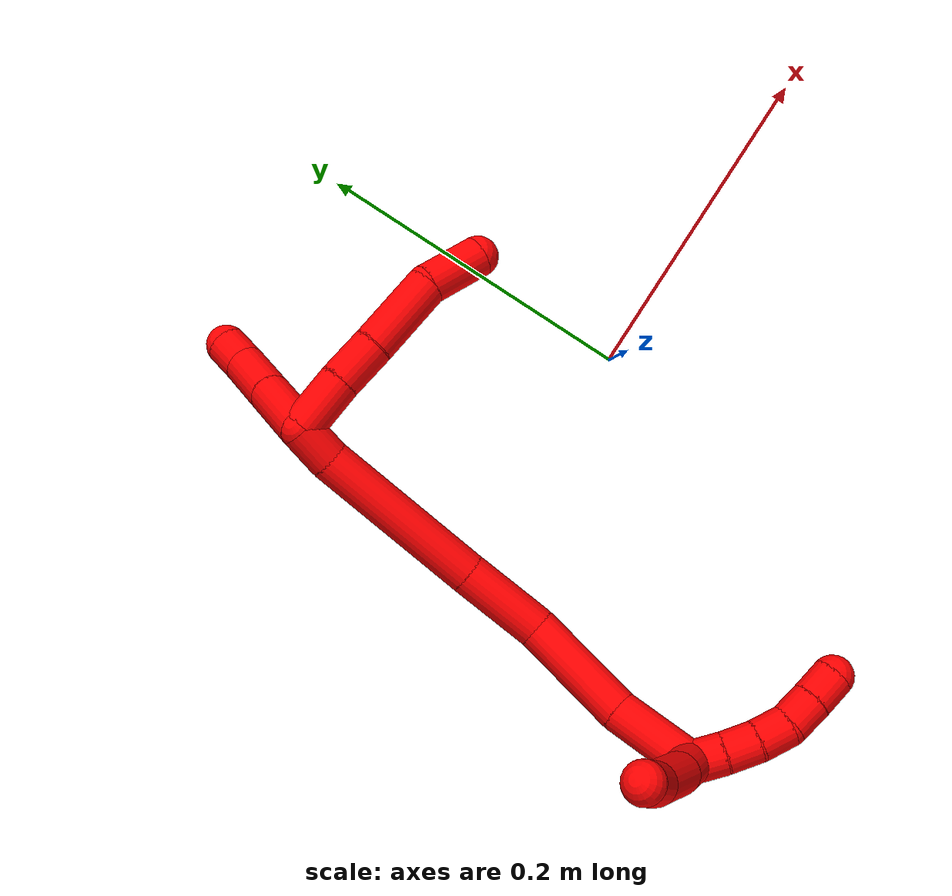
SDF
<sdf version="1.7">
 <world name="default">
  <model name="2">
   <static>0</static>
   <link name="2">
    <collision name="collision-cylinder-e_1_2_8">
     <pose>0.01633 -0.005977 -0.002903 2.0229 1.18438 1.64267</pose>
     <geometry><cylinder><radius>0.0125</radius><length>0.035259</length></cylinder></geometry>
     <surface>
      <friction><ode><mu>1.16</mu><mu2>1.16</mu2><slip1>0</slip1><slip2>0</slip2></ode></friction>
      <contact><ode><kp>1e+06</kp><kd>1</kd><max_vel>0</max_vel><min_depth>0.001</min_depth></ode></contact>
     </surface>
    </collision>
    <visual name="visual-cylinder-e_1_2_8">
     <pose>0.01633 -0.005977 -0.002903 2.0229 1.18438 1.64267</pose>
     <geometry><cylinder><radius>0.0125</radius><length>0.035259</length></cylinder></geometry>
     <material><ambient>1 0 0 1</ambient></material>
    </visual>
    <collision name="collision-cylinder-e_2_8_9">
     <pose>0.045581 -0.017383 -0.008771 2.07066 1.12426 1.63068</pose>
     <geometry><cylinder><radius>0.0125</radius><length>0.028653</length></cylinder></geometry>
     <surface>
      <friction><ode><mu>1.16</mu><mu2>1.16</mu2><slip1>0</slip1><slip2>0</slip2></ode></friction>
      <contact><ode><kp>1e+06</kp><kd>1</kd><max_vel>0</max_vel><min_depth>0.001</min_depth></ode></contact>
     </surface>
    </collision>
    <visual name="visual-cylinder-e_2_8_9">
     <pose>0.045581 -0.017383 -0.008771 2.07066 1.12426 1.63068</pose>
     <geometry><cylinder><radius>0.0125</radius><length>0.028653</length></cylinder></geometry>
     <material><ambient>1 0 0 1</ambient></material>
    </visual>
    <collision name="collision-cylinder-e_3_9_10">
     <pose>0.081017 -0.030674 -0.017749 2.22381 1.15662 1.8458</pose>
     <geometry><cylinder><radius>0.0125</radius><length>0.049186</length></cylinder></geometry>
     <surface>
      <friction><ode><mu>1.16</mu><mu2>1.16</mu2><slip1>0</slip1><slip2>0</slip2></ode></friction>
      <contact><ode><kp>1e+06</kp><kd>1</kd><max_vel>0</max_vel><min_depth>0.001</min_depth></ode></contact>
     </surface>
    </collision>
    <visual name="visual-cylinder-e_3_9_10">
     <pose>0.081017 -0.030674 -0.017749 2.22381 1.15662 1.8458</pose>
     <geometry><cylinder><radius>0.0125</radius><length>0.049186</length></cylinder></geometry>
     <material><ambient>1 0 0 1</ambient></material>
    </visual>
    <collision name="collision-cylinder-e_4_10_6">
     <pose>0.1173 -0.046908 -0.032747 2.39137 0.842471 1.69962</pose>
     <geometry><cylinder><radius>0.0125</radius><length>0.036901</length></cylinder></geometry>
     <surface>
      <friction><ode><mu>1.16</mu><mu2>1.16</mu2><slip1>0</slip1><slip2>0</slip2></ode></friction>
      <contact><ode><kp>1e+06</kp><kd>1</kd><max_vel>0</max_vel><min_depth>0.001</min_depth></ode></contact>
     </surface>
    </collision>
    <visual name="visual-cylinder-e_4_10_6">
     <pose>0.1173 -0.046908 -0.032747 2.39137 0.842471 1.69962</pose>
     <geometry><cylinder><radius>0.0125</radius><length>0.036901</length></cylinder></geometry>
     <material><ambient>1 0 0 1</ambient></material>
    </visual>
    <collision name="collision-cylinder-e_1_2_11">
     <pose>0.010021 0.018405 -0.00582 -1.87707 0.478832 -0.643265</pose>
     <geometry><cylinder><radius>0.0125</radius><length>0.0435</length></cylinder></geometry>
     <surface>
      <friction><ode><mu>1.16</mu><mu2>1.16</mu2><slip1>0</slip1><slip2>0</slip2></ode></friction>
      <contact><ode><kp>1e+06</kp><kd>1</kd><max_vel>0</max_vel><min_depth>0.001</min_depth></ode></contact>
     </surface>
    </collision>
    <visual name="visual-cylinder-e_1_2_11">
     <pose>0.010021 0.018405 -0.00582 -1.87707 0.478832 -0.643265</pose>
     <geometry><cylinder><radius>0.0125</radius><length>0.0435</length></cylinder></geometry>
     <material><ambient>1 0 0 1</ambient></material>
    </visual>
    <collision name="collision-cylinder-e_2_11_12">
     <pose>0.028653 0.052263 -0.015864 -1.83763 0.493224 -0.637104</pose>
     <geometry><cylinder><radius>0.0125</radius><length>0.036373</length></cylinder></geometry>
     <surface>
      <friction><ode><mu>1.16</mu><mu2>1.16</mu2><slip1>0</slip1><slip2>0</slip2></ode></friction>
      <contact><ode><kp>1e+06</kp><kd>1</kd><max_vel>0</max_vel><min_depth>0.001</min_depth></ode></contact>
     </surface>
    </collision>
    <visual name="visual-cylinder-e_2_11_12">
     <pose>0.028653 0.052263 -0.015864 -1.83763 0.493224 -0.637104</pose>
     <geometry><cylinder><radius>0.0125</radius><length>0.036373</length></cylinder></geometry>
     <material><ambient>1 0 0 1</ambient></material>
    </visual>
    <collision name="collision-cylinder-e_3_12_5">
     <pose>0.042376 0.076364 -0.01951 -1.50408 0.532881 -0.499928</pose>
     <geometry><cylinder><radius>0.0125</radius><length>0.020127</length></cylinder></geometry>
     <surface>
      <friction><ode><mu>1.16</mu><mu2>1.16</mu2><slip1>0</slip1><slip2>0</slip2></ode></friction>
      <contact><ode><kp>1e+06</kp><kd>1</kd><max_vel>0</max_vel><min_depth>0.001</min_depth></ode></contact>
     </surface>
    </collision>
    <visual name="visual-cylinder-e_3_12_5">
     <pose>0.042376 0.076364 -0.01951 -1.50408 0.532881 -0.499928</pose>
     <geometry><cylinder><radius>0.0125</radius><length>0.020127</length></cylinder></geometry>
     <material><ambient>1 0 0 1</ambient></material>
    </visual>
    <collision name="collision-cylinder-e_1_2_13">
     <pose>-0.005599 -0.006488 -0.008795 2.50602 -0.473464 -1.26565</pose>
     <geometry><cylinder><radius>0.0125</radius><length>0.024561</length></cylinder></geometry>
     <surface>
      <friction><ode><mu>1.16</mu><mu2>1.16</mu2><slip1>0</slip1><slip2>0</slip2></ode></friction>
      <contact><ode><kp>1e+06</kp><kd>1</kd><max_vel>0</max_vel><min_depth>0.001</min_depth></ode></contact>
     </surface>
    </collision>
    <visual name="visual-cylinder-e_1_2_13">
     <pose>-0.005599 -0.006488 -0.008795 2.50602 -0.473464 -1.26565</pose>
     <geometry><cylinder><radius>0.0125</radius><length>0.024561</length></cylinder></geometry>
     <material><ambient>1 0 0 1</ambient></material>
    </visual>
    <collision name="collision-cylinder-e_2_13_14">
     <pose>-0.030401 -0.048972 -0.050346 2.3091 -0.375793 -0.812377</pose>
     <geometry><cylinder><radius>0.0125</radius><length>0.104639</length></cylinder></geometry>
     <surface>
      <friction><ode><mu>1.16</mu><mu2>1.16</mu2><slip1>0</slip1><slip2>0</slip2></ode></friction>
      <contact><ode><kp>1e+06</kp><kd>1</kd><max_vel>0</max_vel><min_depth>0.001</min_depth></ode></contact>
     </surface>
    </collision>
    <visual name="visual-cylinder-e_2_13_14">
     <pose>-0.030401 -0.048972 -0.050346 2.3091 -0.375793 -0.812377</pose>
     <geometry><cylinder><radius>0.0125</radius><length>0.104639</length></cylinder></geometry>
     <material><ambient>1 0 0 1</ambient></material>
    </visual>
    <collision name="collision-cylinder-e_3_14_15">
     <pose>-0.059117 -0.104307 -0.097868 2.2229 -0.372744 -0.728409</pose>
     <geometry><cylinder><radius>0.0125</radius><length>0.052253</length></cylinder></geometry>
     <surface>
      <friction><ode><mu>1.16</mu><mu2>1.16</mu2><slip1>0</slip1><slip2>0</slip2></ode></friction>
      <contact><ode><kp>1e+06</kp><kd>1</kd><max_vel>0</max_vel><min_depth>0.001</min_depth></ode></contact>
     </surface>
    </collision>
    <visual name="visual-cylinder-e_3_14_15">
     <pose>-0.059117 -0.104307 -0.097868 2.2229 -0.372744 -0.728409</pose>
     <geometry><cylinder><radius>0.0125</radius><length>0.052253</length></cylinder></geometry>
     <material><ambient>1 0 0 1</ambient></material>
    </visual>
    <collision name="collision-cylinder-e_4_15_16">
     <pose>-0.085499 -0.15077 -0.123301 1.94549 -0.524643 -0.750859</pose>
     <geometry><cylinder><radius>0.0125</radius><length>0.06735</length></cylinder></geometry>
     <surface>
      <friction><ode><mu>1.16</mu><mu2>1.16</mu2><slip1>0</slip1><slip2>0</slip2></ode></friction>
      <contact><ode><kp>1e+06</kp><kd>1</kd><max_vel>0</max_vel><min_depth>0.001</min_depth></ode></contact>
     </surface>
    </collision>
    <visual name="visual-cylinder-e_4_15_16">
     <pose>-0.085499 -0.15077 -0.123301 1.94549 -0.524643 -0.750859</pose>
     <geometry><cylinder><radius>0.0125</radius><length>0.06735</length></cylinder></geometry>
     <material><ambient>1 0 0 1</ambient></material>
    </visual>
    <collision name="collision-cylinder-e_5_16_1">
     <pose>-0.111438 -0.201485 -0.138029 1.74126 -0.362192 -0.427971</pose>
     <geometry><cylinder><radius>0.0125</radius><length>0.051198</length></cylinder></geometry>
     <surface>
      <friction><ode><mu>1.16</mu><mu2>1.16</mu2><slip1>0</slip1><slip2>0</slip2></ode></friction>
      <contact><ode><kp>1e+06</kp><kd>1</kd><max_vel>0</max_vel><min_depth>0.001</min_depth></ode></contact>
     </surface>
    </collision>
    <visual name="visual-cylinder-e_5_16_1">
     <pose>-0.111438 -0.201485 -0.138029 1.74126 -0.362192 -0.427971</pose>
     <geometry><cylinder><radius>0.0125</radius><length>0.051198</length></cylinder></geometry>
     <material><ambient>1 0 0 1</ambient></material>
    </visual>
    <collision name="collision-cylinder-e_1_1_17">
     <pose>-0.115392 -0.232993 -0.145428 1.96984 0.53703 0.786135</pose>
     <geometry><cylinder><radius>0.0125</radius><length>0.02</length></cylinder></geometry>
     <surface>
      <friction><ode><mu>1.16</mu><mu2>1.16</mu2><slip1>0</slip1><slip2>0</slip2></ode></friction>
      <contact><ode><kp>1e+06</kp><kd>1</kd><max_vel>0</max_vel><min_depth>0.001</min_depth></ode></contact>
     </surface>
    </collision>
    <visual name="visual-cylinder-e_1_1_17">
     <pose>-0.115392 -0.232993 -0.145428 1.96984 0.53703 0.786135</pose>
     <geometry><cylinder><radius>0.0125</radius><length>0.02</length></cylinder></geometry>
     <material><ambient>1 0 0 1</ambient></material>
    </visual>
    <collision name="collision-cylinder-e_2_17_18">
     <pose>-0.104521 -0.248271 -0.152331 2.02177 0.613273 0.935468</pose>
     <geometry><cylinder><radius>0.0125</radius><length>0.02</length></cylinder></geometry>
     <surface>
      <friction><ode><mu>1.16</mu><mu2>1.16</mu2><slip1>0</slip1><slip2>0</slip2></ode></friction>
      <contact><ode><kp>1e+06</kp><kd>1</kd><max_vel>0</max_vel><min_depth>0.001</min_depth></ode></contact>
     </surface>
    </collision>
    <visual name="visual-cylinder-e_2_17_18">
     <pose>-0.104521 -0.248271 -0.152331 2.02177 0.613273 0.935468</pose>
     <geometry><cylinder><radius>0.0125</radius><length>0.02</length></cylinder></geometry>
     <material><ambient>1 0 0 1</ambient></material>
    </visual>
    <collision name="collision-cylinder-e_3_18_19">
     <pose>-0.092014 -0.262049 -0.159532 2.08638 0.741121 1.17609</pose>
     <geometry><cylinder><radius>0.0125</radius><length>0.02</length></cylinder></geometry>
     <surface>
      <friction><ode><mu>1.16</mu><mu2>1.16</mu2><slip1>0</slip1><slip2>0</slip2></ode></friction>
      <contact><ode><kp>1e+06</kp><kd>1</kd><max_vel>0</max_vel><min_depth>0.001</min_depth></ode></contact>
     </surface>
    </collision>
    <visual name="visual-cylinder-e_3_18_19">
     <pose>-0.092014 -0.262049 -0.159532 2.08638 0.741121 1.17609</pose>
     <geometry><cylinder><radius>0.0125</radius><length>0.02</length></cylinder></geometry>
     <material><ambient>1 0 0 1</ambient></material>
    </visual>
    <collision name="collision-cylinder-e_4_19_20">
     <pose>-0.076674 -0.272422 -0.166424 2.25944 1.03304 1.7546</pose>
     <geometry><cylinder><radius>0.0125</radius><length>0.02</length></cylinder></geometry>
     <surface>
      <friction><ode><mu>1.16</mu><mu2>1.16</mu2><slip1>0</slip1><slip2>0</slip2></ode></friction>
      <contact><ode><kp>1e+06</kp><kd>1</kd><max_vel>0</max_vel><min_depth>0.001</min_depth></ode></contact>
     </surface>
    </collision>
    <visual name="visual-cylinder-e_4_19_20">
     <pose>-0.076674 -0.272422 -0.166424 2.25944 1.03304 1.7546</pose>
     <geometry><cylinder><radius>0.0125</radius><length>0.02</length></cylinder></geometry>
     <material><ambient>1 0 0 1</ambient></material>
    </visual>
    <collision name="collision-cylinder-e_5_20_4">
     <pose>-0.059351 -0.27996 -0.172977 2.31467 1.06224 1.85855</pose>
     <geometry><cylinder><radius>0.0125</radius><length>0.02</length></cylinder></geometry>
     <surface>
      <friction><ode><mu>1.16</mu><mu2>1.16</mu2><slip1>0</slip1><slip2>0</slip2></ode></friction>
      <contact><ode><kp>1e+06</kp><kd>1</kd><max_vel>0</max_vel><min_depth>0.001</min_depth></ode></contact>
     </surface>
    </collision>
    <visual name="visual-cylinder-e_5_20_4">
     <pose>-0.059351 -0.27996 -0.172977 2.31467 1.06224 1.85855</pose>
     <geometry><cylinder><radius>0.0125</radius><length>0.02</length></cylinder></geometry>
     <material><ambient>1 0 0 1</ambient></material>
    </visual>
    <collision name="collision-cylinder-e_1_1_21">
     <pose>-0.124871 -0.22735 -0.129598 0.180026 -0.331015 -0.03015</pose>
     <geometry><cylinder><radius>0.0125</radius><length>0.026851</length></cylinder></geometry>
     <surface>
      <friction><ode><mu>1.16</mu><mu2>1.16</mu2><slip1>0</slip1><slip2>0</slip2></ode></friction>
      <contact><ode><kp>1e+06</kp><kd>1</kd><max_vel>0</max_vel><min_depth>0.001</min_depth></ode></contact>
     </surface>
    </collision>
    <visual name="visual-cylinder-e_1_1_21">
     <pose>-0.124871 -0.22735 -0.129598 0.180026 -0.331015 -0.03015</pose>
     <geometry><cylinder><radius>0.0125</radius><length>0.026851</length></cylinder></geometry>
     <material><ambient>1 0 0 1</ambient></material>
    </visual>
    <collision name="collision-cylinder-e_2_21_22">
     <pose>-0.134536 -0.23146 -0.097356 0.092737 -0.261164 -0.012188</pose>
     <geometry><cylinder><radius>0.0125</radius><length>0.041066</length></cylinder></geometry>
     <surface>
      <friction><ode><mu>1.16</mu><mu2>1.16</mu2><slip1>0</slip1><slip2>0</slip2></ode></friction>
      <contact><ode><kp>1e+06</kp><kd>1</kd><max_vel>0</max_vel><min_depth>0.001</min_depth></ode></contact>
     </surface>
    </collision>
    <visual name="visual-cylinder-e_2_21_22">
     <pose>-0.134536 -0.23146 -0.097356 0.092737 -0.261164 -0.012188</pose>
     <geometry><cylinder><radius>0.0125</radius><length>0.041066</length></cylinder></geometry>
     <material><ambient>1 0 0 1</ambient></material>
    </visual>
    <collision name="collision-cylinder-e_3_22_3">
     <pose>-0.140978 -0.236479 -0.061923 0.200231 -0.071126 -0.007148</pose>
     <geometry><cylinder><radius>0.0125</radius><length>0.032083</length></cylinder></geometry>
     <surface>
      <friction><ode><mu>1.16</mu><mu2>1.16</mu2><slip1>0</slip1><slip2>0</slip2></ode></friction>
      <contact><ode><kp>1e+06</kp><kd>1</kd><max_vel>0</max_vel><min_depth>0.001</min_depth></ode></contact>
     </surface>
    </collision>
    <visual name="visual-cylinder-e_3_22_3">
     <pose>-0.140978 -0.236479 -0.061923 0.200231 -0.071126 -0.007148</pose>
     <geometry><cylinder><radius>0.0125</radius><length>0.032083</length></cylinder></geometry>
     <material><ambient>1 0 0 1</ambient></material>
    </visual>
    <collision name="collision-sphere-3">
     <pose>-0.142118 -0.239662 -0.046241 0 -0 0</pose>
     <geometry><sphere><radius>0.0125</radius></sphere></geometry>
     <surface>
      <friction><ode><mu>1.16</mu><mu2>1.16</mu2><slip1>0</slip1><slip2>0</slip2></ode></friction>
      <contact><ode><kp>1e+06</kp><kd>1</kd><max_vel>0</max_vel><min_depth>0.001</min_depth></ode></contact>
     </surface>
    </collision>
    <visual name="visual-sphere-3">
     <pose>-0.142118 -0.239662 -0.046241 0 -0 0</pose>
     <geometry><sphere><radius>0.0125</radius></sphere></geometry>
     <material><ambient>1 0 0 1</ambient></material>
    </visual>
    <collision name="collision-sphere-22">
     <pose>-0.139838 -0.233297 -0.077604 0 -0 0</pose>
     <geometry><sphere><radius>0.0125</radius></sphere></geometry>
     <surface>
      <friction><ode><mu>1.16</mu><mu2>1.16</mu2><slip1>0</slip1><slip2>0</slip2></ode></friction>
      <contact><ode><kp>1e+06</kp><kd>1</kd><max_vel>0</max_vel><min_depth>0.001</min_depth></ode></contact>
     </surface>
    </collision>
    <visual name="visual-sphere-22">
     <pose>-0.139838 -0.233297 -0.077604 0 -0 0</pose>
     <geometry><sphere><radius>0.0125</radius></sphere></geometry>
     <material><ambient>1 0 0 1</ambient></material>
    </visual>
    <collision name="collision-sphere-21">
     <pose>-0.129235 -0.229623 -0.117107 0 -0 0</pose>
     <geometry><sphere><radius>0.0125</radius></sphere></geometry>
     <surface>
      <friction><ode><mu>1.16</mu><mu2>1.16</mu2><slip1>0</slip1><slip2>0</slip2></ode></friction>
      <contact><ode><kp>1e+06</kp><kd>1</kd><max_vel>0</max_vel><min_depth>0.001</min_depth></ode></contact>
     </surface>
    </collision>
    <visual name="visual-sphere-21">
     <pose>-0.129235 -0.229623 -0.117107 0 -0 0</pose>
     <geometry><sphere><radius>0.0125</radius></sphere></geometry>
     <material><ambient>1 0 0 1</ambient></material>
    </visual>
    <collision name="collision-sphere-4">
     <pose>-0.050617 -0.283543 -0.176274 0 -0 0</pose>
     <geometry><sphere><radius>0.0125</radius></sphere></geometry>
     <surface>
      <friction><ode><mu>1.16</mu><mu2>1.16</mu2><slip1>0</slip1><slip2>0</slip2></ode></friction>
      <contact><ode><kp>1e+06</kp><kd>1</kd><max_vel>0</max_vel><min_depth>0.001</min_depth></ode></contact>
     </surface>
    </collision>
    <visual name="visual-sphere-4">
     <pose>-0.050617 -0.283543 -0.176274 0 -0 0</pose>
     <geometry><sphere><radius>0.0125</radius></sphere></geometry>
     <material><ambient>1 0 0 1</ambient></material>
    </visual>
    <collision name="collision-sphere-20">
     <pose>-0.068086 -0.276377 -0.169679 0 -0 0</pose>
     <geometry><sphere><radius>0.0125</radius></sphere></geometry>
     <surface>
      <friction><ode><mu>1.16</mu><mu2>1.16</mu2><slip1>0</slip1><slip2>0</slip2></ode></friction>
      <contact><ode><kp>1e+06</kp><kd>1</kd><max_vel>0</max_vel><min_depth>0.001</min_depth></ode></contact>
     </surface>
    </collision>
    <visual name="visual-sphere-20">
     <pose>-0.068086 -0.276377 -0.169679 0 -0 0</pose>
     <geometry><sphere><radius>0.0125</radius></sphere></geometry>
     <material><ambient>1 0 0 1</ambient></material>
    </visual>
    <collision name="collision-sphere-11">
     <pose>0.020042 0.036811 -0.011641 0 -0 0</pose>
     <geometry><sphere><radius>0.0125</radius></sphere></geometry>
     <surface>
      <friction><ode><mu>1.16</mu><mu2>1.16</mu2><slip1>0</slip1><slip2>0</slip2></ode></friction>
      <contact><ode><kp>1e+06</kp><kd>1</kd><max_vel>0</max_vel><min_depth>0.001</min_depth></ode></contact>
     </surface>
    </collision>
    <visual name="visual-sphere-11">
     <pose>0.020042 0.036811 -0.011641 0 -0 0</pose>
     <geometry><sphere><radius>0.0125</radius></sphere></geometry>
     <material><ambient>1 0 0 1</ambient></material>
    </visual>
    <collision name="collision-sphere-6">
     <pose>0.13107 -0.055281 -0.041731 0 -0 0</pose>
     <geometry><sphere><radius>0.0125</radius></sphere></geometry>
     <surface>
      <friction><ode><mu>1.16</mu><mu2>1.16</mu2><slip1>0</slip1><slip2>0</slip2></ode></friction>
      <contact><ode><kp>1e+06</kp><kd>1</kd><max_vel>0</max_vel><min_depth>0.001</min_depth></ode></contact>
     </surface>
    </collision>
    <visual name="visual-sphere-6">
     <pose>0.13107 -0.055281 -0.041731 0 -0 0</pose>
     <geometry><sphere><radius>0.0125</radius></sphere></geometry>
     <material><ambient>1 0 0 1</ambient></material>
    </visual>
    <collision name="collision-sphere-10">
     <pose>0.10353 -0.038535 -0.023763 0 -0 0</pose>
     <geometry><sphere><radius>0.0125</radius></sphere></geometry>
     <surface>
      <friction><ode><mu>1.16</mu><mu2>1.16</mu2><slip1>0</slip1><slip2>0</slip2></ode></friction>
      <contact><ode><kp>1e+06</kp><kd>1</kd><max_vel>0</max_vel><min_depth>0.001</min_depth></ode></contact>
     </surface>
    </collision>
    <visual name="visual-sphere-10">
     <pose>0.10353 -0.038535 -0.023763 0 -0 0</pose>
     <geometry><sphere><radius>0.0125</radius></sphere></geometry>
     <material><ambient>1 0 0 1</ambient></material>
    </visual>
    <collision name="collision-sphere-9">
     <pose>0.058503 -0.022813 -0.011736 0 -0 0</pose>
     <geometry><sphere><radius>0.0125</radius></sphere></geometry>
     <surface>
      <friction><ode><mu>1.16</mu><mu2>1.16</mu2><slip1>0</slip1><slip2>0</slip2></ode></friction>
      <contact><ode><kp>1e+06</kp><kd>1</kd><max_vel>0</max_vel><min_depth>0.001</min_depth></ode></contact>
     </surface>
    </collision>
    <visual name="visual-sphere-9">
     <pose>0.058503 -0.022813 -0.011736 0 -0 0</pose>
     <geometry><sphere><radius>0.0125</radius></sphere></geometry>
     <material><ambient>1 0 0 1</ambient></material>
    </visual>
    <collision name="collision-sphere-2">
     <geometry><sphere><radius>0.0125</radius></sphere></geometry>
     <surface>
      <friction><ode><mu>1.16</mu><mu2>1.16</mu2><slip1>0</slip1><slip2>0</slip2></ode></friction>
      <contact><ode><kp>1e+06</kp><kd>1</kd><max_vel>0</max_vel><min_depth>0.001</min_depth></ode></contact>
     </surface>
    </collision>
    <visual name="visual-sphere-2">
     <geometry><sphere><radius>0.0125</radius></sphere></geometry>
     <material><ambient>1 0 0 1</ambient></material>
    </visual>
    <collision name="collision-sphere-19">
     <pose>-0.085263 -0.268467 -0.163169 0 -0 0</pose>
     <geometry><sphere><radius>0.0125</radius></sphere></geometry>
     <surface>
      <friction><ode><mu>1.16</mu><mu2>1.16</mu2><slip1>0</slip1><slip2>0</slip2></ode></friction>
      <contact><ode><kp>1e+06</kp><kd>1</kd><max_vel>0</max_vel><min_depth>0.001</min_depth></ode></contact>
     </surface>
    </collision>
    <visual name="visual-sphere-19">
     <pose>-0.085263 -0.268467 -0.163169 0 -0 0</pose>
     <geometry><sphere><radius>0.0125</radius></sphere></geometry>
     <material><ambient>1 0 0 1</ambient></material>
    </visual>
    <collision name="collision-sphere-8">
     <pose>0.032659 -0.011953 -0.005805 0 -0 0</pose>
     <geometry><sphere><radius>0.0125</radius></sphere></geometry>
     <surface>
      <friction><ode><mu>1.16</mu><mu2>1.16</mu2><slip1>0</slip1><slip2>0</slip2></ode></friction>
      <contact><ode><kp>1e+06</kp><kd>1</kd><max_vel>0</max_vel><min_depth>0.001</min_depth></ode></contact>
     </surface>
    </collision>
    <visual name="visual-sphere-8">
     <pose>0.032659 -0.011953 -0.005805 0 -0 0</pose>
     <geometry><sphere><radius>0.0125</radius></sphere></geometry>
     <material><ambient>1 0 0 1</ambient></material>
    </visual>
    <collision name="collision-sphere-12">
     <pose>0.037264 0.067715 -0.020088 0 -0 0</pose>
     <geometry><sphere><radius>0.0125</radius></sphere></geometry>
     <surface>
      <friction><ode><mu>1.16</mu><mu2>1.16</mu2><slip1>0</slip1><slip2>0</slip2></ode></friction>
      <contact><ode><kp>1e+06</kp><kd>1</kd><max_vel>0</max_vel><min_depth>0.001</min_depth></ode></contact>
     </surface>
    </collision>
    <visual name="visual-sphere-12">
     <pose>0.037264 0.067715 -0.020088 0 -0 0</pose>
     <geometry><sphere><radius>0.0125</radius></sphere></geometry>
     <material><ambient>1 0 0 1</ambient></material>
    </visual>
    <collision name="collision-sphere-5">
     <pose>0.047489 0.085013 -0.018932 0 -0 0</pose>
     <geometry><sphere><radius>0.0125</radius></sphere></geometry>
     <surface>
      <friction><ode><mu>1.16</mu><mu2>1.16</mu2><slip1>0</slip1><slip2>0</slip2></ode></friction>
      <contact><ode><kp>1e+06</kp><kd>1</kd><max_vel>0</max_vel><min_depth>0.001</min_depth></ode></contact>
     </surface>
    </collision>
    <visual name="visual-sphere-5">
     <pose>0.047489 0.085013 -0.018932 0 -0 0</pose>
     <geometry><sphere><radius>0.0125</radius></sphere></geometry>
     <material><ambient>1 0 0 1</ambient></material>
    </visual>
    <collision name="collision-sphere-13">
     <pose>-0.011199 -0.012976 -0.017591 0 -0 0</pose>
     <geometry><sphere><radius>0.0125</radius></sphere></geometry>
     <surface>
      <friction><ode><mu>1.16</mu><mu2>1.16</mu2><slip1>0</slip1><slip2>0</slip2></ode></friction>
      <contact><ode><kp>1e+06</kp><kd>1</kd><max_vel>0</max_vel><min_depth>0.001</min_depth></ode></contact>
     </surface>
    </collision>
    <visual name="visual-sphere-13">
     <pose>-0.011199 -0.012976 -0.017591 0 -0 0</pose>
     <geometry><sphere><radius>0.0125</radius></sphere></geometry>
     <material><ambient>1 0 0 1</ambient></material>
    </visual>
    <collision name="collision-sphere-14">
     <pose>-0.049602 -0.084967 -0.083102 0 -0 0</pose>
     <geometry><sphere><radius>0.0125</radius></sphere></geometry>
     <surface>
      <friction><ode><mu>1.16</mu><mu2>1.16</mu2><slip1>0</slip1><slip2>0</slip2></ode></friction>
      <contact><ode><kp>1e+06</kp><kd>1</kd><max_vel>0</max_vel><min_depth>0.001</min_depth></ode></contact>
     </surface>
    </collision>
    <visual name="visual-sphere-14">
     <pose>-0.049602 -0.084967 -0.083102 0 -0 0</pose>
     <geometry><sphere><radius>0.0125</radius></sphere></geometry>
     <material><ambient>1 0 0 1</ambient></material>
    </visual>
    <collision name="collision-sphere-15">
     <pose>-0.068632 -0.123646 -0.112634 0 -0 0</pose>
     <geometry><sphere><radius>0.0125</radius></sphere></geometry>
     <surface>
      <friction><ode><mu>1.16</mu><mu2>1.16</mu2><slip1>0</slip1><slip2>0</slip2></ode></friction>
      <contact><ode><kp>1e+06</kp><kd>1</kd><max_vel>0</max_vel><min_depth>0.001</min_depth></ode></contact>
     </surface>
    </collision>
    <visual name="visual-sphere-15">
     <pose>-0.068632 -0.123646 -0.112634 0 -0 0</pose>
     <geometry><sphere><radius>0.0125</radius></sphere></geometry>
     <material><ambient>1 0 0 1</ambient></material>
    </visual>
    <collision name="collision-sphere-16">
     <pose>-0.102367 -0.177894 -0.133968 0 -0 0</pose>
     <geometry><sphere><radius>0.0125</radius></sphere></geometry>
     <surface>
      <friction><ode><mu>1.16</mu><mu2>1.16</mu2><slip1>0</slip1><slip2>0</slip2></ode></friction>
      <contact><ode><kp>1e+06</kp><kd>1</kd><max_vel>0</max_vel><min_depth>0.001</min_depth></ode></contact>
     </surface>
    </collision>
    <visual name="visual-sphere-16">
     <pose>-0.102367 -0.177894 -0.133968 0 -0 0</pose>
     <geometry><sphere><radius>0.0125</radius></sphere></geometry>
     <material><ambient>1 0 0 1</ambient></material>
    </visual>
    <collision name="collision-sphere-1">
     <pose>-0.120508 -0.225076 -0.14209 0 -0 0</pose>
     <geometry><sphere><radius>0.0125</radius></sphere></geometry>
     <surface>
      <friction><ode><mu>1.16</mu><mu2>1.16</mu2><slip1>0</slip1><slip2>0</slip2></ode></friction>
      <contact><ode><kp>1e+06</kp><kd>1</kd><max_vel>0</max_vel><min_depth>0.001</min_depth></ode></contact>
     </surface>
    </collision>
    <visual name="visual-sphere-1">
     <pose>-0.120508 -0.225076 -0.14209 0 -0 0</pose>
     <geometry><sphere><radius>0.0125</radius></sphere></geometry>
     <material><ambient>1 0 0 1</ambient></material>
    </visual>
    <collision name="collision-sphere-18">
     <pose>-0.098765 -0.255631 -0.155895 0 -0 0</pose>
     <geometry><sphere><radius>0.0125</radius></sphere></geometry>
     <surface>
      <friction><ode><mu>1.16</mu><mu2>1.16</mu2><slip1>0</slip1><slip2>0</slip2></ode></friction>
      <contact><ode><kp>1e+06</kp><kd>1</kd><max_vel>0</max_vel><min_depth>0.001</min_depth></ode></contact>
     </surface>
    </collision>
    <visual name="visual-sphere-18">
     <pose>-0.098765 -0.255631 -0.155895 0 -0 0</pose>
     <geometry><sphere><radius>0.0125</radius></sphere></geometry>
     <material><ambient>1 0 0 1</ambient></material>
    </visual>
    <collision name="collision-sphere-17">
     <pose>-0.110276 -0.240911 -0.148767 0 -0 0</pose>
     <geometry><sphere><radius>0.0125</radius></sphere></geometry>
     <surface>
      <friction><ode><mu>1.16</mu><mu2>1.16</mu2><slip1>0</slip1><slip2>0</slip2></ode></friction>
      <contact><ode><kp>1e+06</kp><kd>1</kd><max_vel>0</max_vel><min_depth>0.001</min_depth></ode></contact>
     </surface>
    </collision>
    <visual name="visual-sphere-17">
     <pose>-0.110276 -0.240911 -0.148767 0 -0 0</pose>
     <geometry><sphere><radius>0.0125</radius></sphere></geometry>
     <material><ambient>1 0 0 1</ambient></material>
    </visual>
    <inertial>
     <pose>-0.03694 -0.106699 -0.073367 0 -0 0</pose>
     <mass>0.75</mass>
     <inertia>
      <ixx>4.4e-05</ixx>
      <ixy>0</ixy>
      <ixz>0</ixz>
      <iyy>-0.000103</iyy>
      <iyz>0</iyz>
      <izz>0.000136</izz>
     </inertia>
    </inertial>
   </link>
   <pose>-0.13304 0.12875 0.079008 -0.506391 0.223332 0.297103</pose>
  </model>
 </world>
</sdf>
